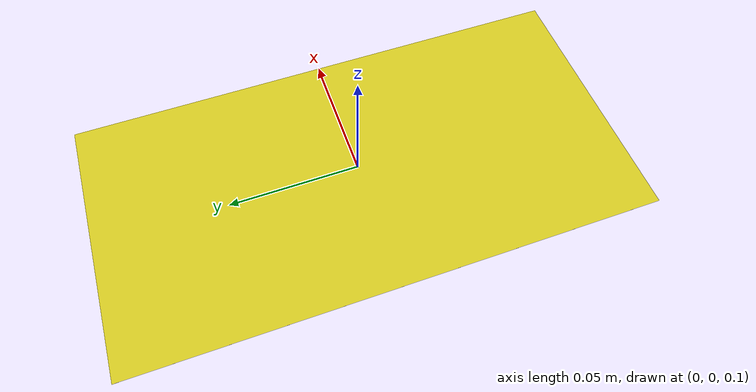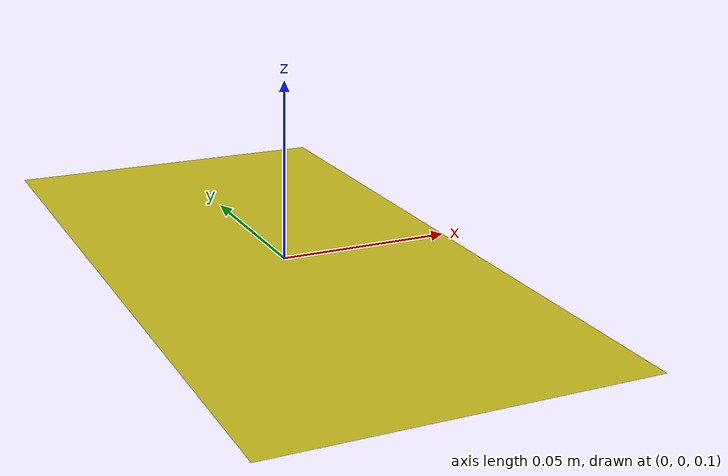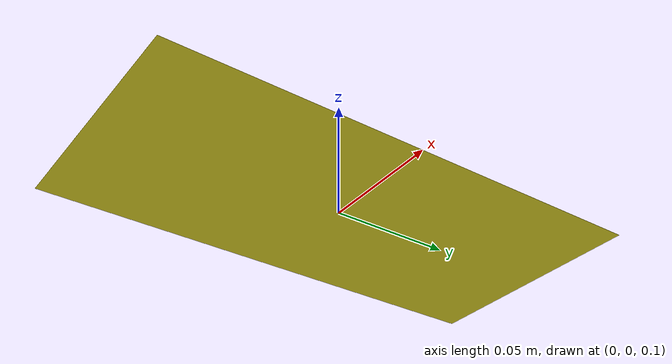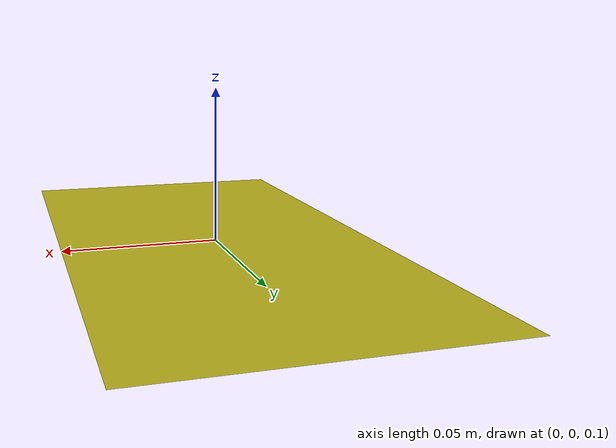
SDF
<?xml version="1.0" ?>
<sdf version="1.4">
    <model name='barrier_tape_yellow'>
      <pose>0 0 0.1 0 -0 0</pose>
      <link name='link'>
        <inertial>
          <mass>0.0001</mass>
          <inertia>
            <ixx>1</ixx>
            <ixy>0</ixy>
            <ixz>0</ixz>
            <iyy>1</iyy>
            <iyz>0</iyz>
            <izz>1</izz>
          </inertia>
        </inertial>
        <collision name='collision'>
          <geometry>
            <box>
              <size>0.1 0.2 0.00001</size>
            </box>
          </geometry>
          <max_contacts>10</max_contacts>
          <surface>
            <bounce/>
            <friction>
              <ode/>
            </friction>
            <contact>
              <ode/>
            </contact>
          </surface>
        </collision>
        <visual name='visual'>
          <geometry>
            <box>
              <size>0.1 0.2 0.00001</size>
            </box>
          </geometry>
        <material>
          <script>
            <uri>model://media/materials/scripts</uri>
            <uri>model://media/materials/textures</uri>
            <name>barrier_tape/Yellow</name>
          </script>
        </material>
        </visual>
        <velocity_decay>
          <linear>0</linear>
          <angular>0</angular>
        </velocity_decay>
        <self_collide>0</self_collide>
        <kinematic>0</kinematic>
        <gravity>1</gravity>
      </link>
      <static>0</static>
    </model>
</sdf>
